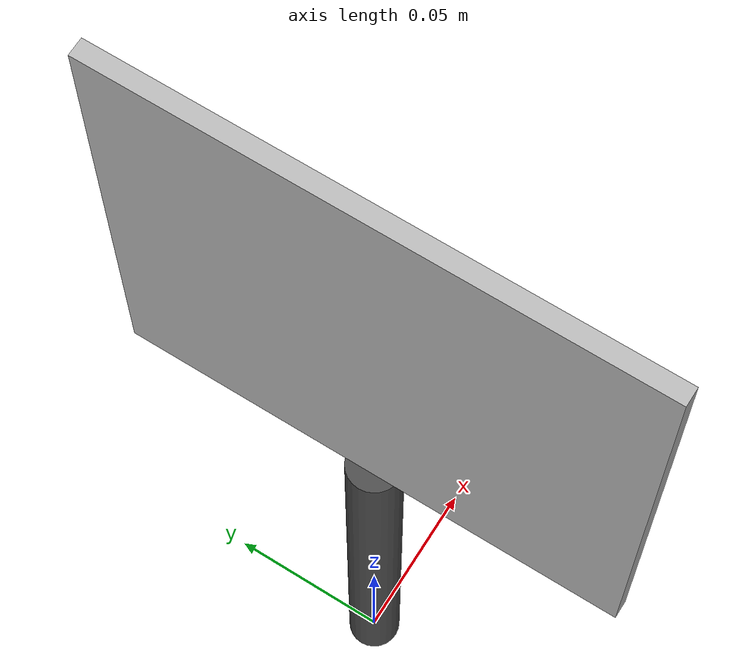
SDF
<?xml version="1.0" ?>
<sdf version="1.6">
  <model name="custom_parking_sign_2">
    <static>true</static>
    <link name="link">
      <visual name="pole_visual">
        <pose>0 0 0.075 0 0 0</pose>
        <geometry>
          <cylinder>
            <radius>0.008</radius>
            <length>0.15</length>
          </cylinder>
        </geometry>
        <material>
          <ambient>0.2 0.2 0.2 1</ambient>
          <diffuse>0.3 0.3 0.3 1</diffuse>
        </material>
      </visual>
      <collision name="pole_collision">
        <pose>0 0 0.075 0 0 0</pose>
        <geometry>
          <cylinder>
            <radius>0.008</radius>
            <length>0.15</length>
          </cylinder>
        </geometry>
      </collision>
      <visual name="board_visual">
        <pose>0 0 0.225 0 0 0</pose>
        <geometry>
          <box>
            <size>0.005 0.15 0.15</size>
          </box>
        </geometry>
        <material>
          <script>
            <uri>model://custom_parking_sign_2/materials/scripts</uri>
            <uri>model://custom_parking_sign_2/materials/textures</uri>
            <name>custom_parking_sign_2_mat</name>
          </script>
        </material>
      </visual>
      <collision name="board_collision">
        <pose>0 0 0.225 0 0 0</pose>
        <geometry>
          <box>
            <size>0.005 0.15 0.15</size>
          </box>
        </geometry>
      </collision>
    </link>
  </model>
</sdf>
